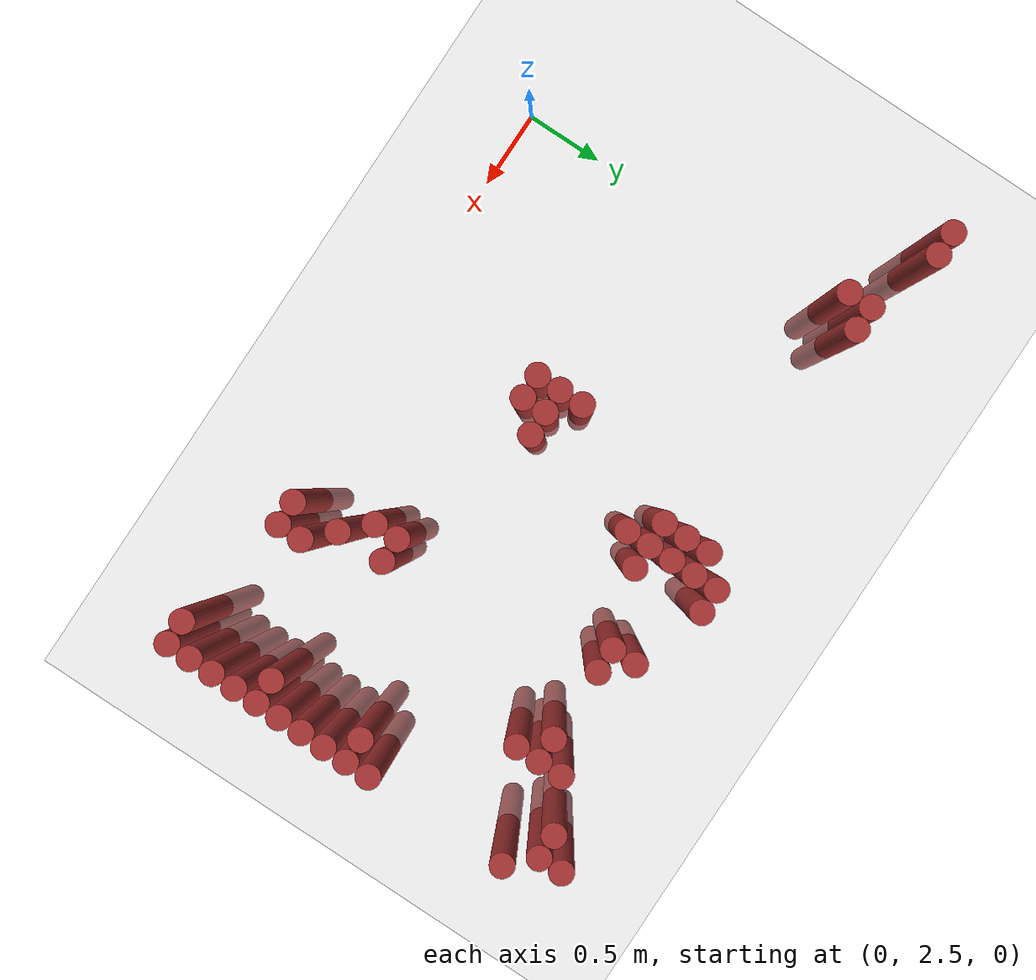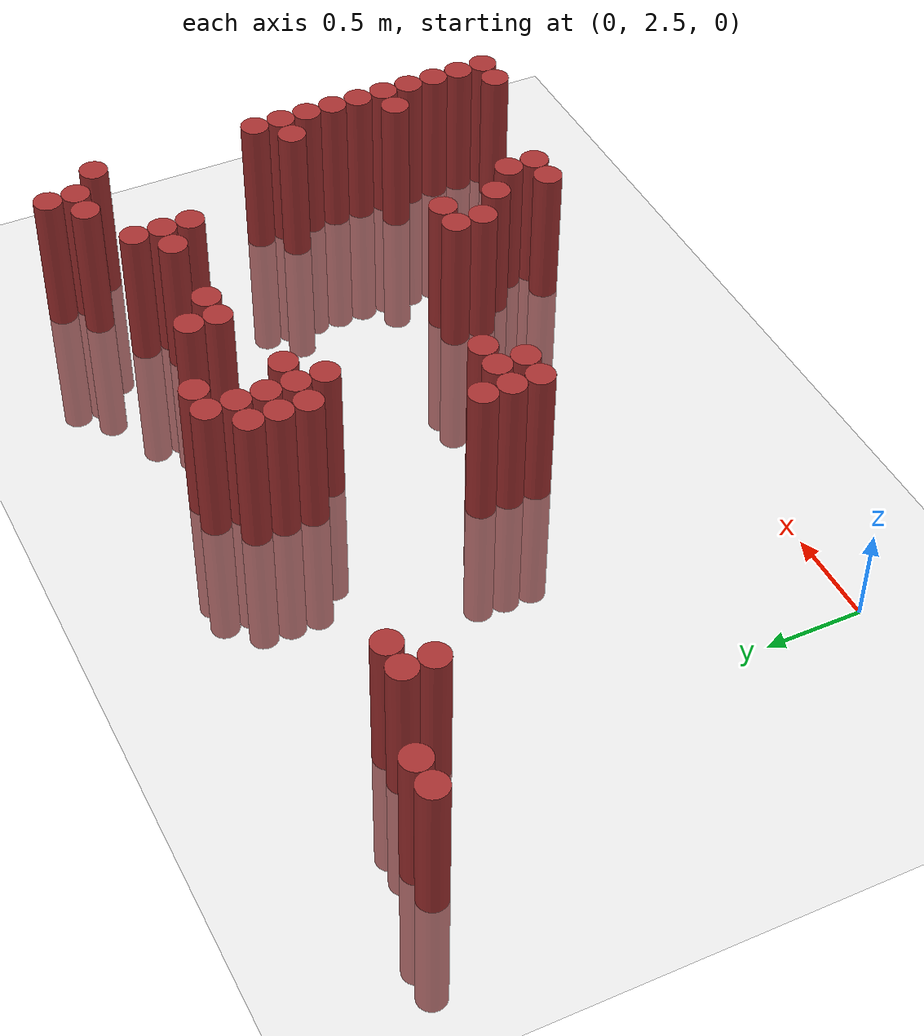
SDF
<sdf version="1.6">
 <world name="default">
  <model name="ground_plane">
   <static>1</static>
   <link name="link">
    <collision name="collision">
     <geometry><plane><normal>0 0 1</normal><size>100 100</size></plane></geometry>
     <surface><friction><ode><mu>100</mu><mu2>50</mu2></ode></friction></surface>
    </collision>
    <visual name="visual">
     <cast_shadows>0</cast_shadows>
     <geometry><plane><normal>0 0 1</normal><size>100 100</size></plane></geometry>
     <material>
      <script><uri>file://media/materials/scripts/gazebo.material</uri><name>Gazebo/Grey</name></script>
     </material>
    </visual>
   </link>
  </model>
  <model name="unit_cylinder_323">
   <static>1</static>
   <pose>-0.575000 4.975000 0.000000 0.000000 0.000000 0.000000</pose>
   <link name="link">
    <inertial>
     <mass>1</mass>
     <inertia><ixx>0.145833</ixx><ixy>0</ixy><ixz>0</ixz><iyy>0.145833</iyy><iyz>0</iyz><izz>0.125</izz></inertia>
    </inertial>
    <collision name="collision">
     <geometry><cylinder><radius>0.075000</radius><length>1.5</length></cylinder></geometry>
    </collision>
    <visual name="visual">
     <geometry><cylinder><radius>0.075000</radius><length>1.5</length></cylinder></geometry>
     <material>
      <ambient>0.648000 0.192000 0.192000 1</ambient>
      <diffuse>0.648000 0.192000 0.192000 1</diffuse>
     </material>
     <material>
      <script><name>Gazebo/Grey</name><uri>file://media/materials/scripts/gazebo.material</uri></script>
     </material>
    </visual>
   </link>
  </model>
  <model name="unit_cylinder_328">
   <static>1</static>
   <pose>-0.425000 4.975000 0.000000 0.000000 0.000000 0.000000</pose>
   <link name="link">
    <inertial>
     <mass>1</mass>
     <inertia><ixx>0.145833</ixx><ixy>0</ixy><ixz>0</ixz><iyy>0.145833</iyy><iyz>0</iyz><izz>0.125</izz></inertia>
    </inertial>
    <collision name="collision">
     <geometry><cylinder><radius>0.075000</radius><length>1.5</length></cylinder></geometry>
    </collision>
    <visual name="visual">
     <geometry><cylinder><radius>0.075000</radius><length>1.5</length></cylinder></geometry>
     <material>
      <ambient>0.648000 0.192000 0.192000 1</ambient>
      <diffuse>0.648000 0.192000 0.192000 1</diffuse>
     </material>
     <material>
      <script><name>Gazebo/Grey</name><uri>file://media/materials/scripts/gazebo.material</uri></script>
     </material>
    </visual>
   </link>
  </model>
  <model name="unit_cylinder_333">
   <static>1</static>
   <pose>0.025000 4.675000 0.000000 0.000000 0.000000 0.000000</pose>
   <link name="link">
    <inertial>
     <mass>1</mass>
     <inertia><ixx>0.145833</ixx><ixy>0</ixy><ixz>0</ixz><iyy>0.145833</iyy><iyz>0</iyz><izz>0.125</izz></inertia>
    </inertial>
    <collision name="collision">
     <geometry><cylinder><radius>0.075000</radius><length>1.5</length></cylinder></geometry>
    </collision>
    <visual name="visual">
     <geometry><cylinder><radius>0.075000</radius><length>1.5</length></cylinder></geometry>
     <material>
      <ambient>0.648000 0.192000 0.192000 1</ambient>
      <diffuse>0.648000 0.192000 0.192000 1</diffuse>
     </material>
     <material>
      <script><name>Gazebo/Grey</name><uri>file://media/materials/scripts/gazebo.material</uri></script>
     </material>
    </visual>
   </link>
  </model>
  <model name="unit_cylinder_334">
   <static>1</static>
   <pose>0.025000 4.825000 0.000000 0.000000 0.000000 0.000000</pose>
   <link name="link">
    <inertial>
     <mass>1</mass>
     <inertia><ixx>0.145833</ixx><ixy>0</ixy><ixz>0</ixz><iyy>0.145833</iyy><iyz>0</iyz><izz>0.125</izz></inertia>
    </inertial>
    <collision name="collision">
     <geometry><cylinder><radius>0.075000</radius><length>1.5</length></cylinder></geometry>
    </collision>
    <visual name="visual">
     <geometry><cylinder><radius>0.075000</radius><length>1.5</length></cylinder></geometry>
     <material>
      <ambient>0.648000 0.192000 0.192000 1</ambient>
      <diffuse>0.648000 0.192000 0.192000 1</diffuse>
     </material>
     <material>
      <script><name>Gazebo/Grey</name><uri>file://media/materials/scripts/gazebo.material</uri></script>
     </material>
    </visual>
   </link>
  </model>
  <model name="unit_cylinder_336">
   <static>1</static>
   <pose>0.175000 4.825000 0.000000 0.000000 0.000000 0.000000</pose>
   <link name="link">
    <inertial>
     <mass>1</mass>
     <inertia><ixx>0.145833</ixx><ixy>0</ixy><ixz>0</ixz><iyy>0.145833</iyy><iyz>0</iyz><izz>0.125</izz></inertia>
    </inertial>
    <collision name="collision">
     <geometry><cylinder><radius>0.075000</radius><length>1.5</length></cylinder></geometry>
    </collision>
    <visual name="visual">
     <geometry><cylinder><radius>0.075000</radius><length>1.5</length></cylinder></geometry>
     <material>
      <ambient>0.648000 0.192000 0.192000 1</ambient>
      <diffuse>0.648000 0.192000 0.192000 1</diffuse>
     </material>
     <material>
      <script><name>Gazebo/Grey</name><uri>file://media/materials/scripts/gazebo.material</uri></script>
     </material>
    </visual>
   </link>
  </model>
  <model name="unit_cylinder_347">
   <static>1</static>
   <pose>1.375000 3.475000 0.000000 0.000000 0.000000 0.000000</pose>
   <link name="link">
    <inertial>
     <mass>1</mass>
     <inertia><ixx>0.145833</ixx><ixy>0</ixy><ixz>0</ixz><iyy>0.145833</iyy><iyz>0</iyz><izz>0.125</izz></inertia>
    </inertial>
    <collision name="collision">
     <geometry><cylinder><radius>0.075000</radius><length>1.5</length></cylinder></geometry>
    </collision>
    <visual name="visual">
     <geometry><cylinder><radius>0.075000</radius><length>1.5</length></cylinder></geometry>
     <material>
      <ambient>0.648000 0.192000 0.192000 1</ambient>
      <diffuse>0.648000 0.192000 0.192000 1</diffuse>
     </material>
     <material>
      <script><name>Gazebo/Grey</name><uri>file://media/materials/scripts/gazebo.material</uri></script>
     </material>
    </visual>
   </link>
  </model>
  <model name="unit_cylinder_348">
   <static>1</static>
   <pose>1.375000 3.625000 0.000000 0.000000 0.000000 0.000000</pose>
   <link name="link">
    <inertial>
     <mass>1</mass>
     <inertia><ixx>0.145833</ixx><ixy>0</ixy><ixz>0</ixz><iyy>0.145833</iyy><iyz>0</iyz><izz>0.125</izz></inertia>
    </inertial>
    <collision name="collision">
     <geometry><cylinder><radius>0.075000</radius><length>1.5</length></cylinder></geometry>
    </collision>
    <visual name="visual">
     <geometry><cylinder><radius>0.075000</radius><length>1.5</length></cylinder></geometry>
     <material>
      <ambient>0.648000 0.192000 0.192000 1</ambient>
      <diffuse>0.648000 0.192000 0.192000 1</diffuse>
     </material>
     <material>
      <script><name>Gazebo/Grey</name><uri>file://media/materials/scripts/gazebo.material</uri></script>
     </material>
    </visual>
   </link>
  </model>
  <model name="unit_cylinder_349">
   <static>1</static>
   <pose>1.375000 3.775000 0.000000 0.000000 0.000000 0.000000</pose>
   <link name="link">
    <inertial>
     <mass>1</mass>
     <inertia><ixx>0.145833</ixx><ixy>0</ixy><ixz>0</ixz><iyy>0.145833</iyy><iyz>0</iyz><izz>0.125</izz></inertia>
    </inertial>
    <collision name="collision">
     <geometry><cylinder><radius>0.075000</radius><length>1.5</length></cylinder></geometry>
    </collision>
    <visual name="visual">
     <geometry><cylinder><radius>0.075000</radius><length>1.5</length></cylinder></geometry>
     <material>
      <ambient>0.648000 0.192000 0.192000 1</ambient>
      <diffuse>0.648000 0.192000 0.192000 1</diffuse>
     </material>
     <material>
      <script><name>Gazebo/Grey</name><uri>file://media/materials/scripts/gazebo.material</uri></script>
     </material>
    </visual>
   </link>
  </model>
  <model name="unit_cylinder_353">
   <static>1</static>
   <pose>1.525000 3.475000 0.000000 0.000000 0.000000 0.000000</pose>
   <link name="link">
    <inertial>
     <mass>1</mass>
     <inertia><ixx>0.145833</ixx><ixy>0</ixy><ixz>0</ixz><iyy>0.145833</iyy><iyz>0</iyz><izz>0.125</izz></inertia>
    </inertial>
    <collision name="collision">
     <geometry><cylinder><radius>0.075000</radius><length>1.5</length></cylinder></geometry>
    </collision>
    <visual name="visual">
     <geometry><cylinder><radius>0.075000</radius><length>1.5</length></cylinder></geometry>
     <material>
      <ambient>0.648000 0.192000 0.192000 1</ambient>
      <diffuse>0.648000 0.192000 0.192000 1</diffuse>
     </material>
     <material>
      <script><name>Gazebo/Grey</name><uri>file://media/materials/scripts/gazebo.material</uri></script>
     </material>
    </visual>
   </link>
  </model>
  <model name="unit_cylinder_354">
   <static>1</static>
   <pose>1.525000 3.625000 0.000000 0.000000 0.000000 0.000000</pose>
   <link name="link">
    <inertial>
     <mass>1</mass>
     <inertia><ixx>0.145833</ixx><ixy>0</ixy><ixz>0</ixz><iyy>0.145833</iyy><iyz>0</iyz><izz>0.125</izz></inertia>
    </inertial>
    <collision name="collision">
     <geometry><cylinder><radius>0.075000</radius><length>1.5</length></cylinder></geometry>
    </collision>
    <visual name="visual">
     <geometry><cylinder><radius>0.075000</radius><length>1.5</length></cylinder></geometry>
     <material>
      <ambient>0.648000 0.192000 0.192000 1</ambient>
      <diffuse>0.648000 0.192000 0.192000 1</diffuse>
     </material>
     <material>
      <script><name>Gazebo/Grey</name><uri>file://media/materials/scripts/gazebo.material</uri></script>
     </material>
    </visual>
   </link>
  </model>
  <model name="unit_cylinder_360">
   <static>1</static>
   <pose>1.675000 3.625000 0.000000 0.000000 0.000000 0.000000</pose>
   <link name="link">
    <inertial>
     <mass>1</mass>
     <inertia><ixx>0.145833</ixx><ixy>0</ixy><ixz>0</ixz><iyy>0.145833</iyy><iyz>0</iyz><izz>0.125</izz></inertia>
    </inertial>
    <collision name="collision">
     <geometry><cylinder><radius>0.075000</radius><length>1.5</length></cylinder></geometry>
    </collision>
    <visual name="visual">
     <geometry><cylinder><radius>0.075000</radius><length>1.5</length></cylinder></geometry>
     <material>
      <ambient>0.648000 0.192000 0.192000 1</ambient>
      <diffuse>0.648000 0.192000 0.192000 1</diffuse>
     </material>
     <material>
      <script><name>Gazebo/Grey</name><uri>file://media/materials/scripts/gazebo.material</uri></script>
     </material>
    </visual>
   </link>
  </model>
  <model name="unit_cylinder_361">
   <static>1</static>
   <pose>1.675000 4.525000 0.000000 0.000000 0.000000 0.000000</pose>
   <link name="link">
    <inertial>
     <mass>1</mass>
     <inertia><ixx>0.145833</ixx><ixy>0</ixy><ixz>0</ixz><iyy>0.145833</iyy><iyz>0</iyz><izz>0.125</izz></inertia>
    </inertial>
    <collision name="collision">
     <geometry><cylinder><radius>0.075000</radius><length>1.5</length></cylinder></geometry>
    </collision>
    <visual name="visual">
     <geometry><cylinder><radius>0.075000</radius><length>1.5</length></cylinder></geometry>
     <material>
      <ambient>0.648000 0.192000 0.192000 1</ambient>
      <diffuse>0.648000 0.192000 0.192000 1</diffuse>
     </material>
     <material>
      <script><name>Gazebo/Grey</name><uri>file://media/materials/scripts/gazebo.material</uri></script>
     </material>
    </visual>
   </link>
  </model>
  <model name="unit_cylinder_362">
   <static>1</static>
   <pose>1.675000 4.675000 0.000000 0.000000 0.000000 0.000000</pose>
   <link name="link">
    <inertial>
     <mass>1</mass>
     <inertia><ixx>0.145833</ixx><ixy>0</ixy><ixz>0</ixz><iyy>0.145833</iyy><iyz>0</iyz><izz>0.125</izz></inertia>
    </inertial>
    <collision name="collision">
     <geometry><cylinder><radius>0.075000</radius><length>1.5</length></cylinder></geometry>
    </collision>
    <visual name="visual">
     <geometry><cylinder><radius>0.075000</radius><length>1.5</length></cylinder></geometry>
     <material>
      <ambient>0.648000 0.192000 0.192000 1</ambient>
      <diffuse>0.648000 0.192000 0.192000 1</diffuse>
     </material>
     <material>
      <script><name>Gazebo/Grey</name><uri>file://media/materials/scripts/gazebo.material</uri></script>
     </material>
    </visual>
   </link>
  </model>
  <model name="unit_cylinder_363">
   <static>1</static>
   <pose>1.675000 4.825000 0.000000 0.000000 0.000000 0.000000</pose>
   <link name="link">
    <inertial>
     <mass>1</mass>
     <inertia><ixx>0.145833</ixx><ixy>0</ixy><ixz>0</ixz><iyy>0.145833</iyy><iyz>0</iyz><izz>0.125</izz></inertia>
    </inertial>
    <collision name="collision">
     <geometry><cylinder><radius>0.075000</radius><length>1.5</length></cylinder></geometry>
    </collision>
    <visual name="visual">
     <geometry><cylinder><radius>0.075000</radius><length>1.5</length></cylinder></geometry>
     <material>
      <ambient>0.648000 0.192000 0.192000 1</ambient>
      <diffuse>0.648000 0.192000 0.192000 1</diffuse>
     </material>
     <material>
      <script><name>Gazebo/Grey</name><uri>file://media/materials/scripts/gazebo.material</uri></script>
     </material>
    </visual>
   </link>
  </model>
  <model name="unit_cylinder_368">
   <static>1</static>
   <pose>1.825000 4.375000 0.000000 0.000000 0.000000 0.000000</pose>
   <link name="link">
    <inertial>
     <mass>1</mass>
     <inertia><ixx>0.145833</ixx><ixy>0</ixy><ixz>0</ixz><iyy>0.145833</iyy><iyz>0</iyz><izz>0.125</izz></inertia>
    </inertial>
    <collision name="collision">
     <geometry><cylinder><radius>0.075000</radius><length>1.5</length></cylinder></geometry>
    </collision>
    <visual name="visual">
     <geometry><cylinder><radius>0.075000</radius><length>1.5</length></cylinder></geometry>
     <material>
      <ambient>0.648000 0.192000 0.192000 1</ambient>
      <diffuse>0.648000 0.192000 0.192000 1</diffuse>
     </material>
     <material>
      <script><name>Gazebo/Grey</name><uri>file://media/materials/scripts/gazebo.material</uri></script>
     </material>
    </visual>
   </link>
  </model>
  <model name="unit_cylinder_369">
   <static>1</static>
   <pose>1.825000 4.525000 0.000000 0.000000 0.000000 0.000000</pose>
   <link name="link">
    <inertial>
     <mass>1</mass>
     <inertia><ixx>0.145833</ixx><ixy>0</ixy><ixz>0</ixz><iyy>0.145833</iyy><iyz>0</iyz><izz>0.125</izz></inertia>
    </inertial>
    <collision name="collision">
     <geometry><cylinder><radius>0.075000</radius><length>1.5</length></cylinder></geometry>
    </collision>
    <visual name="visual">
     <geometry><cylinder><radius>0.075000</radius><length>1.5</length></cylinder></geometry>
     <material>
      <ambient>0.648000 0.192000 0.192000 1</ambient>
      <diffuse>0.648000 0.192000 0.192000 1</diffuse>
     </material>
     <material>
      <script><name>Gazebo/Grey</name><uri>file://media/materials/scripts/gazebo.material</uri></script>
     </material>
    </visual>
   </link>
  </model>
  <model name="unit_cylinder_370">
   <static>1</static>
   <pose>1.825000 4.675000 0.000000 0.000000 0.000000 0.000000</pose>
   <link name="link">
    <inertial>
     <mass>1</mass>
     <inertia><ixx>0.145833</ixx><ixy>0</ixy><ixz>0</ixz><iyy>0.145833</iyy><iyz>0</iyz><izz>0.125</izz></inertia>
    </inertial>
    <collision name="collision">
     <geometry><cylinder><radius>0.075000</radius><length>1.5</length></cylinder></geometry>
    </collision>
    <visual name="visual">
     <geometry><cylinder><radius>0.075000</radius><length>1.5</length></cylinder></geometry>
     <material>
      <ambient>0.648000 0.192000 0.192000 1</ambient>
      <diffuse>0.648000 0.192000 0.192000 1</diffuse>
     </material>
     <material>
      <script><name>Gazebo/Grey</name><uri>file://media/materials/scripts/gazebo.material</uri></script>
     </material>
    </visual>
   </link>
  </model>
  <model name="unit_cylinder_371">
   <static>1</static>
   <pose>1.825000 4.825000 0.000000 0.000000 0.000000 0.000000</pose>
   <link name="link">
    <inertial>
     <mass>1</mass>
     <inertia><ixx>0.145833</ixx><ixy>0</ixy><ixz>0</ixz><iyy>0.145833</iyy><iyz>0</iyz><izz>0.125</izz></inertia>
    </inertial>
    <collision name="collision">
     <geometry><cylinder><radius>0.075000</radius><length>1.5</length></cylinder></geometry>
    </collision>
    <visual name="visual">
     <geometry><cylinder><radius>0.075000</radius><length>1.5</length></cylinder></geometry>
     <material>
      <ambient>0.648000 0.192000 0.192000 1</ambient>
      <diffuse>0.648000 0.192000 0.192000 1</diffuse>
     </material>
     <material>
      <script><name>Gazebo/Grey</name><uri>file://media/materials/scripts/gazebo.material</uri></script>
     </material>
    </visual>
   </link>
  </model>
  <model name="unit_cylinder_372">
   <static>1</static>
   <pose>1.825000 4.975000 0.000000 0.000000 0.000000 0.000000</pose>
   <link name="link">
    <inertial>
     <mass>1</mass>
     <inertia><ixx>0.145833</ixx><ixy>0</ixy><ixz>0</ixz><iyy>0.145833</iyy><iyz>0</iyz><izz>0.125</izz></inertia>
    </inertial>
    <collision name="collision">
     <geometry><cylinder><radius>0.075000</radius><length>1.5</length></cylinder></geometry>
    </collision>
    <visual name="visual">
     <geometry><cylinder><radius>0.075000</radius><length>1.5</length></cylinder></geometry>
     <material>
      <ambient>0.648000 0.192000 0.192000 1</ambient>
      <diffuse>0.648000 0.192000 0.192000 1</diffuse>
     </material>
     <material>
      <script><name>Gazebo/Grey</name><uri>file://media/materials/scripts/gazebo.material</uri></script>
     </material>
    </visual>
   </link>
  </model>
  <model name="unit_cylinder_379">
   <static>1</static>
   <pose>1.975000 4.525000 0.000000 0.000000 0.000000 0.000000</pose>
   <link name="link">
    <inertial>
     <mass>1</mass>
     <inertia><ixx>0.145833</ixx><ixy>0</ixy><ixz>0</ixz><iyy>0.145833</iyy><iyz>0</iyz><izz>0.125</izz></inertia>
    </inertial>
    <collision name="collision">
     <geometry><cylinder><radius>0.075000</radius><length>1.5</length></cylinder></geometry>
    </collision>
    <visual name="visual">
     <geometry><cylinder><radius>0.075000</radius><length>1.5</length></cylinder></geometry>
     <material>
      <ambient>0.648000 0.192000 0.192000 1</ambient>
      <diffuse>0.648000 0.192000 0.192000 1</diffuse>
     </material>
     <material>
      <script><name>Gazebo/Grey</name><uri>file://media/materials/scripts/gazebo.material</uri></script>
     </material>
    </visual>
   </link>
  </model>
  <model name="unit_cylinder_380">
   <static>1</static>
   <pose>1.975000 4.975000 0.000000 0.000000 0.000000 0.000000</pose>
   <link name="link">
    <inertial>
     <mass>1</mass>
     <inertia><ixx>0.145833</ixx><ixy>0</ixy><ixz>0</ixz><iyy>0.145833</iyy><iyz>0</iyz><izz>0.125</izz></inertia>
    </inertial>
    <collision name="collision">
     <geometry><cylinder><radius>0.075000</radius><length>1.5</length></cylinder></geometry>
    </collision>
    <visual name="visual">
     <geometry><cylinder><radius>0.075000</radius><length>1.5</length></cylinder></geometry>
     <material>
      <ambient>0.648000 0.192000 0.192000 1</ambient>
      <diffuse>0.648000 0.192000 0.192000 1</diffuse>
     </material>
     <material>
      <script><name>Gazebo/Grey</name><uri>file://media/materials/scripts/gazebo.material</uri></script>
     </material>
    </visual>
   </link>
  </model>
  <model name="unit_cylinder_399">
   <static>1</static>
   <pose>2.425000 4.675000 0.000000 0.000000 0.000000 0.000000</pose>
   <link name="link">
    <inertial>
     <mass>1</mass>
     <inertia><ixx>0.145833</ixx><ixy>0</ixy><ixz>0</ixz><iyy>0.145833</iyy><iyz>0</iyz><izz>0.125</izz></inertia>
    </inertial>
    <collision name="collision">
     <geometry><cylinder><radius>0.075000</radius><length>1.5</length></cylinder></geometry>
    </collision>
    <visual name="visual">
     <geometry><cylinder><radius>0.075000</radius><length>1.5</length></cylinder></geometry>
     <material>
      <ambient>0.648000 0.192000 0.192000 1</ambient>
      <diffuse>0.648000 0.192000 0.192000 1</diffuse>
     </material>
     <material>
      <script><name>Gazebo/Grey</name><uri>file://media/materials/scripts/gazebo.material</uri></script>
     </material>
    </visual>
   </link>
  </model>
  <model name="unit_cylinder_400">
   <static>1</static>
   <pose>2.425000 4.825000 0.000000 0.000000 0.000000 0.000000</pose>
   <link name="link">
    <inertial>
     <mass>1</mass>
     <inertia><ixx>0.145833</ixx><ixy>0</ixy><ixz>0</ixz><iyy>0.145833</iyy><iyz>0</iyz><izz>0.125</izz></inertia>
    </inertial>
    <collision name="collision">
     <geometry><cylinder><radius>0.075000</radius><length>1.5</length></cylinder></geometry>
    </collision>
    <visual name="visual">
     <geometry><cylinder><radius>0.075000</radius><length>1.5</length></cylinder></geometry>
     <material>
      <ambient>0.648000 0.192000 0.192000 1</ambient>
      <diffuse>0.648000 0.192000 0.192000 1</diffuse>
     </material>
     <material>
      <script><name>Gazebo/Grey</name><uri>file://media/materials/scripts/gazebo.material</uri></script>
     </material>
    </visual>
   </link>
  </model>
  <model name="unit_cylinder_404">
   <static>1</static>
   <pose>2.575000 3.175000 0.000000 0.000000 0.000000 0.000000</pose>
   <link name="link">
    <inertial>
     <mass>1</mass>
     <inertia><ixx>0.145833</ixx><ixy>0</ixy><ixz>0</ixz><iyy>0.145833</iyy><iyz>0</iyz><izz>0.125</izz></inertia>
    </inertial>
    <collision name="collision">
     <geometry><cylinder><radius>0.075000</radius><length>1.5</length></cylinder></geometry>
    </collision>
    <visual name="visual">
     <geometry><cylinder><radius>0.075000</radius><length>1.5</length></cylinder></geometry>
     <material>
      <ambient>0.648000 0.192000 0.192000 1</ambient>
      <diffuse>0.648000 0.192000 0.192000 1</diffuse>
     </material>
     <material>
      <script><name>Gazebo/Grey</name><uri>file://media/materials/scripts/gazebo.material</uri></script>
     </material>
    </visual>
   </link>
  </model>
  <model name="unit_cylinder_405">
   <static>1</static>
   <pose>2.575000 3.325000 0.000000 0.000000 0.000000 0.000000</pose>
   <link name="link">
    <inertial>
     <mass>1</mass>
     <inertia><ixx>0.145833</ixx><ixy>0</ixy><ixz>0</ixz><iyy>0.145833</iyy><iyz>0</iyz><izz>0.125</izz></inertia>
    </inertial>
    <collision name="collision">
     <geometry><cylinder><radius>0.075000</radius><length>1.5</length></cylinder></geometry>
    </collision>
    <visual name="visual">
     <geometry><cylinder><radius>0.075000</radius><length>1.5</length></cylinder></geometry>
     <material>
      <ambient>0.648000 0.192000 0.192000 1</ambient>
      <diffuse>0.648000 0.192000 0.192000 1</diffuse>
     </material>
     <material>
      <script><name>Gazebo/Grey</name><uri>file://media/materials/scripts/gazebo.material</uri></script>
     </material>
    </visual>
   </link>
  </model>
  <model name="unit_cylinder_406">
   <static>1</static>
   <pose>2.575000 4.675000 0.000000 0.000000 0.000000 0.000000</pose>
   <link name="link">
    <inertial>
     <mass>1</mass>
     <inertia><ixx>0.145833</ixx><ixy>0</ixy><ixz>0</ixz><iyy>0.145833</iyy><iyz>0</iyz><izz>0.125</izz></inertia>
    </inertial>
    <collision name="collision">
     <geometry><cylinder><radius>0.075000</radius><length>1.5</length></cylinder></geometry>
    </collision>
    <visual name="visual">
     <geometry><cylinder><radius>0.075000</radius><length>1.5</length></cylinder></geometry>
     <material>
      <ambient>0.648000 0.192000 0.192000 1</ambient>
      <diffuse>0.648000 0.192000 0.192000 1</diffuse>
     </material>
     <material>
      <script><name>Gazebo/Grey</name><uri>file://media/materials/scripts/gazebo.material</uri></script>
     </material>
    </visual>
   </link>
  </model>
  <model name="unit_cylinder_411">
   <static>1</static>
   <pose>2.725000 2.725000 0.000000 0.000000 0.000000 0.000000</pose>
   <link name="link">
    <inertial>
     <mass>1</mass>
     <inertia><ixx>0.145833</ixx><ixy>0</ixy><ixz>0</ixz><iyy>0.145833</iyy><iyz>0</iyz><izz>0.125</izz></inertia>
    </inertial>
    <collision name="collision">
     <geometry><cylinder><radius>0.075000</radius><length>1.5</length></cylinder></geometry>
    </collision>
    <visual name="visual">
     <geometry><cylinder><radius>0.075000</radius><length>1.5</length></cylinder></geometry>
     <material>
      <ambient>0.648000 0.192000 0.192000 1</ambient>
      <diffuse>0.648000 0.192000 0.192000 1</diffuse>
     </material>
     <material>
      <script><name>Gazebo/Grey</name><uri>file://media/materials/scripts/gazebo.material</uri></script>
     </material>
    </visual>
   </link>
  </model>
  <model name="unit_cylinder_412">
   <static>1</static>
   <pose>2.725000 3.025000 0.000000 0.000000 0.000000 0.000000</pose>
   <link name="link">
    <inertial>
     <mass>1</mass>
     <inertia><ixx>0.145833</ixx><ixy>0</ixy><ixz>0</ixz><iyy>0.145833</iyy><iyz>0</iyz><izz>0.125</izz></inertia>
    </inertial>
    <collision name="collision">
     <geometry><cylinder><radius>0.075000</radius><length>1.5</length></cylinder></geometry>
    </collision>
    <visual name="visual">
     <geometry><cylinder><radius>0.075000</radius><length>1.5</length></cylinder></geometry>
     <material>
      <ambient>0.648000 0.192000 0.192000 1</ambient>
      <diffuse>0.648000 0.192000 0.192000 1</diffuse>
     </material>
     <material>
      <script><name>Gazebo/Grey</name><uri>file://media/materials/scripts/gazebo.material</uri></script>
     </material>
    </visual>
   </link>
  </model>
  <model name="unit_cylinder_413">
   <static>1</static>
   <pose>2.725000 3.325000 0.000000 0.000000 0.000000 0.000000</pose>
   <link name="link">
    <inertial>
     <mass>1</mass>
     <inertia><ixx>0.145833</ixx><ixy>0</ixy><ixz>0</ixz><iyy>0.145833</iyy><iyz>0</iyz><izz>0.125</izz></inertia>
    </inertial>
    <collision name="collision">
     <geometry><cylinder><radius>0.075000</radius><length>1.5</length></cylinder></geometry>
    </collision>
    <visual name="visual">
     <geometry><cylinder><radius>0.075000</radius><length>1.5</length></cylinder></geometry>
     <material>
      <ambient>0.648000 0.192000 0.192000 1</ambient>
      <diffuse>0.648000 0.192000 0.192000 1</diffuse>
     </material>
     <material>
      <script><name>Gazebo/Grey</name><uri>file://media/materials/scripts/gazebo.material</uri></script>
     </material>
    </visual>
   </link>
  </model>
  <model name="unit_cylinder_419">
   <static>1</static>
   <pose>2.875000 2.725000 0.000000 0.000000 0.000000 0.000000</pose>
   <link name="link">
    <inertial>
     <mass>1</mass>
     <inertia><ixx>0.145833</ixx><ixy>0</ixy><ixz>0</ixz><iyy>0.145833</iyy><iyz>0</iyz><izz>0.125</izz></inertia>
    </inertial>
    <collision name="collision">
     <geometry><cylinder><radius>0.075000</radius><length>1.5</length></cylinder></geometry>
    </collision>
    <visual name="visual">
     <geometry><cylinder><radius>0.075000</radius><length>1.5</length></cylinder></geometry>
     <material>
      <ambient>0.648000 0.192000 0.192000 1</ambient>
      <diffuse>0.648000 0.192000 0.192000 1</diffuse>
     </material>
     <material>
      <script><name>Gazebo/Grey</name><uri>file://media/materials/scripts/gazebo.material</uri></script>
     </material>
    </visual>
   </link>
  </model>
  <model name="unit_cylinder_420">
   <static>1</static>
   <pose>2.875000 2.875000 0.000000 0.000000 0.000000 0.000000</pose>
   <link name="link">
    <inertial>
     <mass>1</mass>
     <inertia><ixx>0.145833</ixx><ixy>0</ixy><ixz>0</ixz><iyy>0.145833</iyy><iyz>0</iyz><izz>0.125</izz></inertia>
    </inertial>
    <collision name="collision">
     <geometry><cylinder><radius>0.075000</radius><length>1.5</length></cylinder></geometry>
    </collision>
    <visual name="visual">
     <geometry><cylinder><radius>0.075000</radius><length>1.5</length></cylinder></geometry>
     <material>
      <ambient>0.648000 0.192000 0.192000 1</ambient>
      <diffuse>0.648000 0.192000 0.192000 1</diffuse>
     </material>
     <material>
      <script><name>Gazebo/Grey</name><uri>file://media/materials/scripts/gazebo.material</uri></script>
     </material>
    </visual>
   </link>
  </model>
  <model name="unit_cylinder_426">
   <static>1</static>
   <pose>3.025000 4.675000 0.000000 0.000000 0.000000 0.000000</pose>
   <link name="link">
    <inertial>
     <mass>1</mass>
     <inertia><ixx>0.145833</ixx><ixy>0</ixy><ixz>0</ixz><iyy>0.145833</iyy><iyz>0</iyz><izz>0.125</izz></inertia>
    </inertial>
    <collision name="collision">
     <geometry><cylinder><radius>0.075000</radius><length>1.5</length></cylinder></geometry>
    </collision>
    <visual name="visual">
     <geometry><cylinder><radius>0.075000</radius><length>1.5</length></cylinder></geometry>
     <material>
      <ambient>0.648000 0.192000 0.192000 1</ambient>
      <diffuse>0.648000 0.192000 0.192000 1</diffuse>
     </material>
     <material>
      <script><name>Gazebo/Grey</name><uri>file://media/materials/scripts/gazebo.material</uri></script>
     </material>
    </visual>
   </link>
  </model>
  <model name="unit_cylinder_429">
   <static>1</static>
   <pose>3.175000 4.525000 0.000000 0.000000 0.000000 0.000000</pose>
   <link name="link">
    <inertial>
     <mass>1</mass>
     <inertia><ixx>0.145833</ixx><ixy>0</ixy><ixz>0</ixz><iyy>0.145833</iyy><iyz>0</iyz><izz>0.125</izz></inertia>
    </inertial>
    <collision name="collision">
     <geometry><cylinder><radius>0.075000</radius><length>1.5</length></cylinder></geometry>
    </collision>
    <visual name="visual">
     <geometry><cylinder><radius>0.075000</radius><length>1.5</length></cylinder></geometry>
     <material>
      <ambient>0.648000 0.192000 0.192000 1</ambient>
      <diffuse>0.648000 0.192000 0.192000 1</diffuse>
     </material>
     <material>
      <script><name>Gazebo/Grey</name><uri>file://media/materials/scripts/gazebo.material</uri></script>
     </material>
    </visual>
   </link>
  </model>
  <model name="unit_cylinder_430">
   <static>1</static>
   <pose>3.175000 4.675000 0.000000 0.000000 0.000000 0.000000</pose>
   <link name="link">
    <inertial>
     <mass>1</mass>
     <inertia><ixx>0.145833</ixx><ixy>0</ixy><ixz>0</ixz><iyy>0.145833</iyy><iyz>0</iyz><izz>0.125</izz></inertia>
    </inertial>
    <collision name="collision">
     <geometry><cylinder><radius>0.075000</radius><length>1.5</length></cylinder></geometry>
    </collision>
    <visual name="visual">
     <geometry><cylinder><radius>0.075000</radius><length>1.5</length></cylinder></geometry>
     <material>
      <ambient>0.648000 0.192000 0.192000 1</ambient>
      <diffuse>0.648000 0.192000 0.192000 1</diffuse>
     </material>
     <material>
      <script><name>Gazebo/Grey</name><uri>file://media/materials/scripts/gazebo.material</uri></script>
     </material>
    </visual>
   </link>
  </model>
  <model name="unit_cylinder_431">
   <static>1</static>
   <pose>3.175000 4.825000 0.000000 0.000000 0.000000 0.000000</pose>
   <link name="link">
    <inertial>
     <mass>1</mass>
     <inertia><ixx>0.145833</ixx><ixy>0</ixy><ixz>0</ixz><iyy>0.145833</iyy><iyz>0</iyz><izz>0.125</izz></inertia>
    </inertial>
    <collision name="collision">
     <geometry><cylinder><radius>0.075000</radius><length>1.5</length></cylinder></geometry>
    </collision>
    <visual name="visual">
     <geometry><cylinder><radius>0.075000</radius><length>1.5</length></cylinder></geometry>
     <material>
      <ambient>0.648000 0.192000 0.192000 1</ambient>
      <diffuse>0.648000 0.192000 0.192000 1</diffuse>
     </material>
     <material>
      <script><name>Gazebo/Grey</name><uri>file://media/materials/scripts/gazebo.material</uri></script>
     </material>
    </visual>
   </link>
  </model>
  <model name="unit_cylinder_437">
   <static>1</static>
   <pose>3.475000 4.975000 0.000000 0.000000 0.000000 0.000000</pose>
   <link name="link">
    <inertial>
     <mass>1</mass>
     <inertia><ixx>0.145833</ixx><ixy>0</ixy><ixz>0</ixz><iyy>0.145833</iyy><iyz>0</iyz><izz>0.125</izz></inertia>
    </inertial>
    <collision name="collision">
     <geometry><cylinder><radius>0.075000</radius><length>1.5</length></cylinder></geometry>
    </collision>
    <visual name="visual">
     <geometry><cylinder><radius>0.075000</radius><length>1.5</length></cylinder></geometry>
     <material>
      <ambient>0.648000 0.192000 0.192000 1</ambient>
      <diffuse>0.648000 0.192000 0.192000 1</diffuse>
     </material>
     <material>
      <script><name>Gazebo/Grey</name><uri>file://media/materials/scripts/gazebo.material</uri></script>
     </material>
    </visual>
   </link>
  </model>
  <model name="unit_cylinder_442">
   <static>1</static>
   <pose>3.625000 2.575000 0.000000 0.000000 0.000000 0.000000</pose>
   <link name="link">
    <inertial>
     <mass>1</mass>
     <inertia><ixx>0.145833</ixx><ixy>0</ixy><ixz>0</ixz><iyy>0.145833</iyy><iyz>0</iyz><izz>0.125</izz></inertia>
    </inertial>
    <collision name="collision">
     <geometry><cylinder><radius>0.075000</radius><length>1.5</length></cylinder></geometry>
    </collision>
    <visual name="visual">
     <geometry><cylinder><radius>0.075000</radius><length>1.5</length></cylinder></geometry>
     <material>
      <ambient>0.648000 0.192000 0.192000 1</ambient>
      <diffuse>0.648000 0.192000 0.192000 1</diffuse>
     </material>
     <material>
      <script><name>Gazebo/Grey</name><uri>file://media/materials/scripts/gazebo.material</uri></script>
     </material>
    </visual>
   </link>
  </model>
  <model name="unit_cylinder_443">
   <static>1</static>
   <pose>3.625000 3.175000 0.000000 0.000000 0.000000 0.000000</pose>
   <link name="link">
    <inertial>
     <mass>1</mass>
     <inertia><ixx>0.145833</ixx><ixy>0</ixy><ixz>0</ixz><iyy>0.145833</iyy><iyz>0</iyz><izz>0.125</izz></inertia>
    </inertial>
    <collision name="collision">
     <geometry><cylinder><radius>0.075000</radius><length>1.5</length></cylinder></geometry>
    </collision>
    <visual name="visual">
     <geometry><cylinder><radius>0.075000</radius><length>1.5</length></cylinder></geometry>
     <material>
      <ambient>0.648000 0.192000 0.192000 1</ambient>
      <diffuse>0.648000 0.192000 0.192000 1</diffuse>
     </material>
     <material>
      <script><name>Gazebo/Grey</name><uri>file://media/materials/scripts/gazebo.material</uri></script>
     </material>
    </visual>
   </link>
  </model>
  <model name="unit_cylinder_444">
   <static>1</static>
   <pose>3.625000 3.775000 0.000000 0.000000 0.000000 0.000000</pose>
   <link name="link">
    <inertial>
     <mass>1</mass>
     <inertia><ixx>0.145833</ixx><ixy>0</ixy><ixz>0</ixz><iyy>0.145833</iyy><iyz>0</iyz><izz>0.125</izz></inertia>
    </inertial>
    <collision name="collision">
     <geometry><cylinder><radius>0.075000</radius><length>1.5</length></cylinder></geometry>
    </collision>
    <visual name="visual">
     <geometry><cylinder><radius>0.075000</radius><length>1.5</length></cylinder></geometry>
     <material>
      <ambient>0.648000 0.192000 0.192000 1</ambient>
      <diffuse>0.648000 0.192000 0.192000 1</diffuse>
     </material>
     <material>
      <script><name>Gazebo/Grey</name><uri>file://media/materials/scripts/gazebo.material</uri></script>
     </material>
    </visual>
   </link>
  </model>
  <model name="unit_cylinder_445">
   <static>1</static>
   <pose>3.625000 4.975000 0.000000 0.000000 0.000000 0.000000</pose>
   <link name="link">
    <inertial>
     <mass>1</mass>
     <inertia><ixx>0.145833</ixx><ixy>0</ixy><ixz>0</ixz><iyy>0.145833</iyy><iyz>0</iyz><izz>0.125</izz></inertia>
    </inertial>
    <collision name="collision">
     <geometry><cylinder><radius>0.075000</radius><length>1.5</length></cylinder></geometry>
    </collision>
    <visual name="visual">
     <geometry><cylinder><radius>0.075000</radius><length>1.5</length></cylinder></geometry>
     <material>
      <ambient>0.648000 0.192000 0.192000 1</ambient>
      <diffuse>0.648000 0.192000 0.192000 1</diffuse>
     </material>
     <material>
      <script><name>Gazebo/Grey</name><uri>file://media/materials/scripts/gazebo.material</uri></script>
     </material>
    </visual>
   </link>
  </model>
  <model name="unit_cylinder_446">
   <static>1</static>
   <pose>3.625000 5.125000 0.000000 0.000000 0.000000 0.000000</pose>
   <link name="link">
    <inertial>
     <mass>1</mass>
     <inertia><ixx>0.145833</ixx><ixy>0</ixy><ixz>0</ixz><iyy>0.145833</iyy><iyz>0</iyz><izz>0.125</izz></inertia>
    </inertial>
    <collision name="collision">
     <geometry><cylinder><radius>0.075000</radius><length>1.5</length></cylinder></geometry>
    </collision>
    <visual name="visual">
     <geometry><cylinder><radius>0.075000</radius><length>1.5</length></cylinder></geometry>
     <material>
      <ambient>0.648000 0.192000 0.192000 1</ambient>
      <diffuse>0.648000 0.192000 0.192000 1</diffuse>
     </material>
     <material>
      <script><name>Gazebo/Grey</name><uri>file://media/materials/scripts/gazebo.material</uri></script>
     </material>
    </visual>
   </link>
  </model>
  <model name="unit_cylinder_459">
   <static>1</static>
   <pose>3.775000 2.575000 0.000000 0.000000 0.000000 0.000000</pose>
   <link name="link">
    <inertial>
     <mass>1</mass>
     <inertia><ixx>0.145833</ixx><ixy>0</ixy><ixz>0</ixz><iyy>0.145833</iyy><iyz>0</iyz><izz>0.125</izz></inertia>
    </inertial>
    <collision name="collision">
     <geometry><cylinder><radius>0.075000</radius><length>1.5</length></cylinder></geometry>
    </collision>
    <visual name="visual">
     <geometry><cylinder><radius>0.075000</radius><length>1.5</length></cylinder></geometry>
     <material>
      <ambient>0.648000 0.192000 0.192000 1</ambient>
      <diffuse>0.648000 0.192000 0.192000 1</diffuse>
     </material>
     <material>
      <script><name>Gazebo/Grey</name><uri>file://media/materials/scripts/gazebo.material</uri></script>
     </material>
    </visual>
   </link>
  </model>
  <model name="unit_cylinder_460">
   <static>1</static>
   <pose>3.775000 2.725000 0.000000 0.000000 0.000000 0.000000</pose>
   <link name="link">
    <inertial>
     <mass>1</mass>
     <inertia><ixx>0.145833</ixx><ixy>0</ixy><ixz>0</ixz><iyy>0.145833</iyy><iyz>0</iyz><izz>0.125</izz></inertia>
    </inertial>
    <collision name="collision">
     <geometry><cylinder><radius>0.075000</radius><length>1.5</length></cylinder></geometry>
    </collision>
    <visual name="visual">
     <geometry><cylinder><radius>0.075000</radius><length>1.5</length></cylinder></geometry>
     <material>
      <ambient>0.648000 0.192000 0.192000 1</ambient>
      <diffuse>0.648000 0.192000 0.192000 1</diffuse>
     </material>
     <material>
      <script><name>Gazebo/Grey</name><uri>file://media/materials/scripts/gazebo.material</uri></script>
     </material>
    </visual>
   </link>
  </model>
  <model name="unit_cylinder_461">
   <static>1</static>
   <pose>3.775000 2.875000 0.000000 0.000000 0.000000 0.000000</pose>
   <link name="link">
    <inertial>
     <mass>1</mass>
     <inertia><ixx>0.145833</ixx><ixy>0</ixy><ixz>0</ixz><iyy>0.145833</iyy><iyz>0</iyz><izz>0.125</izz></inertia>
    </inertial>
    <collision name="collision">
     <geometry><cylinder><radius>0.075000</radius><length>1.5</length></cylinder></geometry>
    </collision>
    <visual name="visual">
     <geometry><cylinder><radius>0.075000</radius><length>1.5</length></cylinder></geometry>
     <material>
      <ambient>0.648000 0.192000 0.192000 1</ambient>
      <diffuse>0.648000 0.192000 0.192000 1</diffuse>
     </material>
     <material>
      <script><name>Gazebo/Grey</name><uri>file://media/materials/scripts/gazebo.material</uri></script>
     </material>
    </visual>
   </link>
  </model>
  <model name="unit_cylinder_462">
   <static>1</static>
   <pose>3.775000 3.025000 0.000000 0.000000 0.000000 0.000000</pose>
   <link name="link">
    <inertial>
     <mass>1</mass>
     <inertia><ixx>0.145833</ixx><ixy>0</ixy><ixz>0</ixz><iyy>0.145833</iyy><iyz>0</iyz><izz>0.125</izz></inertia>
    </inertial>
    <collision name="collision">
     <geometry><cylinder><radius>0.075000</radius><length>1.5</length></cylinder></geometry>
    </collision>
    <visual name="visual">
     <geometry><cylinder><radius>0.075000</radius><length>1.5</length></cylinder></geometry>
     <material>
      <ambient>0.648000 0.192000 0.192000 1</ambient>
      <diffuse>0.648000 0.192000 0.192000 1</diffuse>
     </material>
     <material>
      <script><name>Gazebo/Grey</name><uri>file://media/materials/scripts/gazebo.material</uri></script>
     </material>
    </visual>
   </link>
  </model>
  <model name="unit_cylinder_463">
   <static>1</static>
   <pose>3.775000 3.175000 0.000000 0.000000 0.000000 0.000000</pose>
   <link name="link">
    <inertial>
     <mass>1</mass>
     <inertia><ixx>0.145833</ixx><ixy>0</ixy><ixz>0</ixz><iyy>0.145833</iyy><iyz>0</iyz><izz>0.125</izz></inertia>
    </inertial>
    <collision name="collision">
     <geometry><cylinder><radius>0.075000</radius><length>1.5</length></cylinder></geometry>
    </collision>
    <visual name="visual">
     <geometry><cylinder><radius>0.075000</radius><length>1.5</length></cylinder></geometry>
     <material>
      <ambient>0.648000 0.192000 0.192000 1</ambient>
      <diffuse>0.648000 0.192000 0.192000 1</diffuse>
     </material>
     <material>
      <script><name>Gazebo/Grey</name><uri>file://media/materials/scripts/gazebo.material</uri></script>
     </material>
    </visual>
   </link>
  </model>
  <model name="unit_cylinder_464">
   <static>1</static>
   <pose>3.775000 3.325000 0.000000 0.000000 0.000000 0.000000</pose>
   <link name="link">
    <inertial>
     <mass>1</mass>
     <inertia><ixx>0.145833</ixx><ixy>0</ixy><ixz>0</ixz><iyy>0.145833</iyy><iyz>0</iyz><izz>0.125</izz></inertia>
    </inertial>
    <collision name="collision">
     <geometry><cylinder><radius>0.075000</radius><length>1.5</length></cylinder></geometry>
    </collision>
    <visual name="visual">
     <geometry><cylinder><radius>0.075000</radius><length>1.5</length></cylinder></geometry>
     <material>
      <ambient>0.648000 0.192000 0.192000 1</ambient>
      <diffuse>0.648000 0.192000 0.192000 1</diffuse>
     </material>
     <material>
      <script><name>Gazebo/Grey</name><uri>file://media/materials/scripts/gazebo.material</uri></script>
     </material>
    </visual>
   </link>
  </model>
  <model name="unit_cylinder_465">
   <static>1</static>
   <pose>3.775000 3.475000 0.000000 0.000000 0.000000 0.000000</pose>
   <link name="link">
    <inertial>
     <mass>1</mass>
     <inertia><ixx>0.145833</ixx><ixy>0</ixy><ixz>0</ixz><iyy>0.145833</iyy><iyz>0</iyz><izz>0.125</izz></inertia>
    </inertial>
    <collision name="collision">
     <geometry><cylinder><radius>0.075000</radius><length>1.5</length></cylinder></geometry>
    </collision>
    <visual name="visual">
     <geometry><cylinder><radius>0.075000</radius><length>1.5</length></cylinder></geometry>
     <material>
      <ambient>0.648000 0.192000 0.192000 1</ambient>
      <diffuse>0.648000 0.192000 0.192000 1</diffuse>
     </material>
     <material>
      <script><name>Gazebo/Grey</name><uri>file://media/materials/scripts/gazebo.material</uri></script>
     </material>
    </visual>
   </link>
  </model>
  <model name="unit_cylinder_466">
   <static>1</static>
   <pose>3.775000 3.625000 0.000000 0.000000 0.000000 0.000000</pose>
   <link name="link">
    <inertial>
     <mass>1</mass>
     <inertia><ixx>0.145833</ixx><ixy>0</ixy><ixz>0</ixz><iyy>0.145833</iyy><iyz>0</iyz><izz>0.125</izz></inertia>
    </inertial>
    <collision name="collision">
     <geometry><cylinder><radius>0.075000</radius><length>1.5</length></cylinder></geometry>
    </collision>
    <visual name="visual">
     <geometry><cylinder><radius>0.075000</radius><length>1.5</length></cylinder></geometry>
     <material>
      <ambient>0.648000 0.192000 0.192000 1</ambient>
      <diffuse>0.648000 0.192000 0.192000 1</diffuse>
     </material>
     <material>
      <script><name>Gazebo/Grey</name><uri>file://media/materials/scripts/gazebo.material</uri></script>
     </material>
    </visual>
   </link>
  </model>
  <model name="unit_cylinder_467">
   <static>1</static>
   <pose>3.775000 3.775000 0.000000 0.000000 0.000000 0.000000</pose>
   <link name="link">
    <inertial>
     <mass>1</mass>
     <inertia><ixx>0.145833</ixx><ixy>0</ixy><ixz>0</ixz><iyy>0.145833</iyy><iyz>0</iyz><izz>0.125</izz></inertia>
    </inertial>
    <collision name="collision">
     <geometry><cylinder><radius>0.075000</radius><length>1.5</length></cylinder></geometry>
    </collision>
    <visual name="visual">
     <geometry><cylinder><radius>0.075000</radius><length>1.5</length></cylinder></geometry>
     <material>
      <ambient>0.648000 0.192000 0.192000 1</ambient>
      <diffuse>0.648000 0.192000 0.192000 1</diffuse>
     </material>
     <material>
      <script><name>Gazebo/Grey</name><uri>file://media/materials/scripts/gazebo.material</uri></script>
     </material>
    </visual>
   </link>
  </model>
  <model name="unit_cylinder_468">
   <static>1</static>
   <pose>3.775000 3.925000 0.000000 0.000000 0.000000 0.000000</pose>
   <link name="link">
    <inertial>
     <mass>1</mass>
     <inertia><ixx>0.145833</ixx><ixy>0</ixy><ixz>0</ixz><iyy>0.145833</iyy><iyz>0</iyz><izz>0.125</izz></inertia>
    </inertial>
    <collision name="collision">
     <geometry><cylinder><radius>0.075000</radius><length>1.5</length></cylinder></geometry>
    </collision>
    <visual name="visual">
     <geometry><cylinder><radius>0.075000</radius><length>1.5</length></cylinder></geometry>
     <material>
      <ambient>0.648000 0.192000 0.192000 1</ambient>
      <diffuse>0.648000 0.192000 0.192000 1</diffuse>
     </material>
     <material>
      <script><name>Gazebo/Grey</name><uri>file://media/materials/scripts/gazebo.material</uri></script>
     </material>
    </visual>
   </link>
  </model>
  <model name="unit_cylinder_469">
   <static>1</static>
   <pose>3.775000 4.825000 0.000000 0.000000 0.000000 0.000000</pose>
   <link name="link">
    <inertial>
     <mass>1</mass>
     <inertia><ixx>0.145833</ixx><ixy>0</ixy><ixz>0</ixz><iyy>0.145833</iyy><iyz>0</iyz><izz>0.125</izz></inertia>
    </inertial>
    <collision name="collision">
     <geometry><cylinder><radius>0.075000</radius><length>1.5</length></cylinder></geometry>
    </collision>
    <visual name="visual">
     <geometry><cylinder><radius>0.075000</radius><length>1.5</length></cylinder></geometry>
     <material>
      <ambient>0.648000 0.192000 0.192000 1</ambient>
      <diffuse>0.648000 0.192000 0.192000 1</diffuse>
     </material>
     <material>
      <script><name>Gazebo/Grey</name><uri>file://media/materials/scripts/gazebo.material</uri></script>
     </material>
    </visual>
   </link>
  </model>
 </world>
</sdf>
